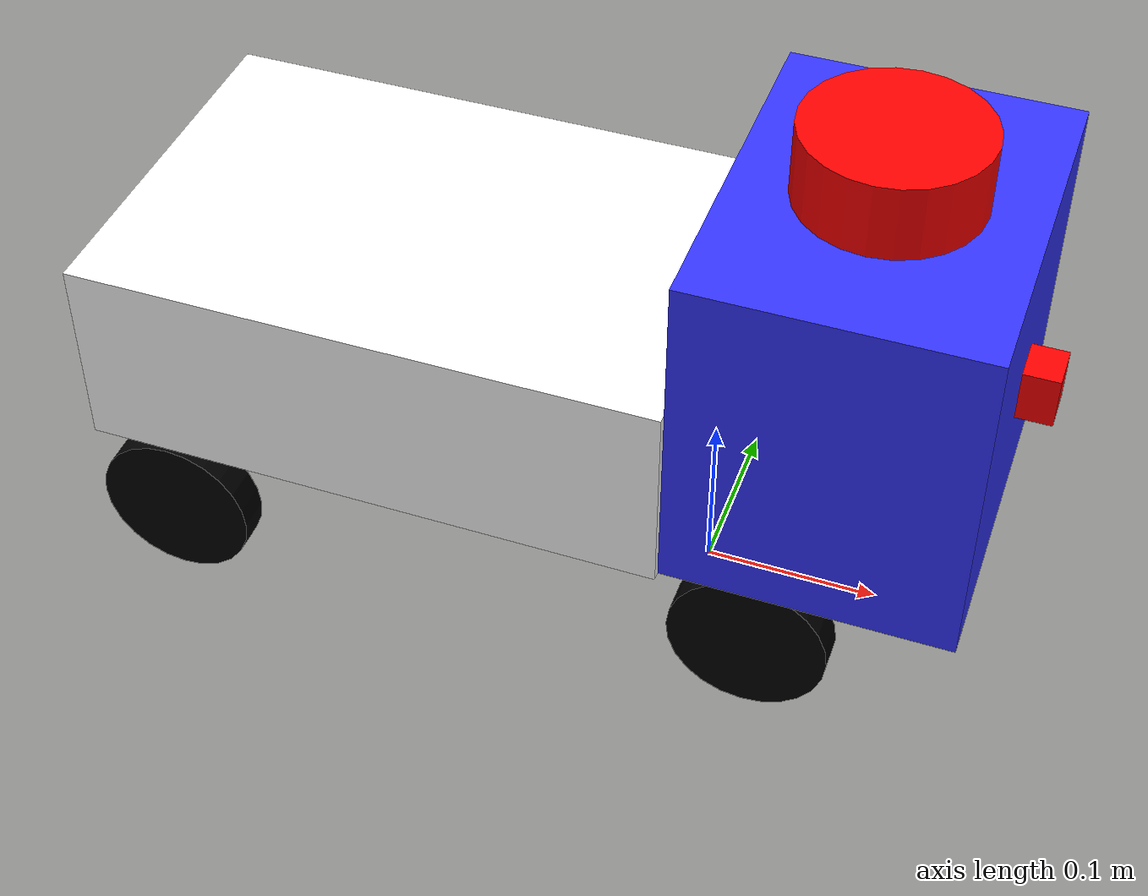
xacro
<?xml version="1.0"?>
<robot xmlns:xacro="http://ros.org/wiki/xacro" name="truck" >

  <xacro:arg name="wheel_diameter" default="0.09"/>

  <xacro:property name="wheel_radius" value="${$(arg wheel_diameter)/2}"/>
  <xacro:property name="wheel_diameter" value="0.09"/>
  <xacro:property name="wheel_width" value="0.02"/>
  <xacro:property name="car_width" value="0.492"/>
  <xacro:property name="cabin_width" value="0.21"/>
  <xacro:property name="trunk_width" value="0.22"/>
  <xacro:property name="wheel_friction" value="0.8"/>
  <xacro:property name="wheelbase_length" value="0.26"/>
  <xacro:property name="cabin_length" value="0.16"/>
  <xacro:property name="trunk_length" value="0.334"/>
  <xacro:property name="front_wheelbase_width" value="0.198"/>
  <xacro:property name="rear_wheelbase_width" value="0.204"/>
  <xacro:property name="wheelbase_width" value="0.213"/>
  <xacro:property name="wheel_mass" value="0.1"/>
  <xacro:property name="total_mass" value = "3.0"/>
  <xacro:property name="chassis_height" value = "0.286"/>
  <xacro:property name="cabin_height" value = "${chassis_height - wheel_diameter}"/>
  <xacro:property name="trunk_height" value = "0.115"/>
  <xacro:property name="chassis_elevation" value = "-0.01"/>
  <xacro:property name="chassis_mass" value = "${total_mass-4*wheel_mass}"/>
  <xacro:property name="cabin_mass" value = "${chassis_mass/2}"/>
  <xacro:property name="trunk_mass" value = "${chassis_mass/2}"/>

  <!-- COLOR -->
    <material name="blue">
      <color rgba="0.2 0.2 1 1"/>
    </material>

    <material name="white">
      <color rgba="1 1 1 1" />
    </material>

    <material name="black">
      <color rgba="0 0 0 1"/>
    </material>

    <material name="red">
        <color rgba="1 0 0 1"/>
    </material>

    <material name="gray">
        <color rgba="0.5 0.5 0.5 1"/>
    </material>

    <material name="invisible">
      <color rgba="0.0 0.0 0.0 0.0"/>
    </material>

  <!-- INERTIAL -->
  <xacro:macro name="cylinder_inertia" params="m r h">
        <inertia  ixx="${m*(3*r*r+h*h)/12}" ixy = "0" ixz = "0"
                    iyy="${m*(3*r*r+h*h)/12}" iyz = "0"
                    izz="${m*r*r/2}" />
  </xacro:macro>

  <xacro:macro name="box_inertia" params="m x y z">
          <inertia  ixx="${m*(y*y+z*z)/12}" ixy = "0" ixz = "0"
                    iyy="${m*(x*x+z*z)/12}" iyz = "0"
                    izz="${m*(x*x+z*z)/12}" />
  </xacro:macro>

  <xacro:macro name="sphere_inertia" params="m r">
          <inertia  ixx="${2*m*r*r/5}" ixy = "0" ixz = "0"
                    iyy="${2*m*r*r/5}" iyz = "0"
                    izz="${2*m*r*r/5}" />
  </xacro:macro>

  <xacro:macro name="cylinder_inertial" params="m r h">
    <inertial>
      <mass value="${m}"/>
      <xacro:cylinder_inertia m="${m}" r="${r}" h="${h}"/>
    </inertial>
  </xacro:macro>

  <!-- BASE FOOTPRINT -->

  <link name="base_footprint">
  </link>

  <joint name="base_footprint_joint" type="fixed">
      <parent link="base_link"/>
      <child link="base_footprint"/>
      <origin xyz="0 0 0" rpy="0 0 0"/>
  </joint>
   <!-- BASE LINK -->
  <link name="base_link">

  </link>
  <!-- CABIN LINK -->
  <link name="cabin_link">
    <visual>
      <geometry>
        <box size="${cabin_length} ${cabin_width} ${cabin_height}"/>
      </geometry>
      <material name="blue"/>
    </visual>
    <collision>
      <geometry>
        <box size="${cabin_length} ${cabin_width} ${cabin_height}"/>
      </geometry>
      <material name="blue"/>
    </collision>
    <inertial>
      <mass value="${cabin_mass}"/>
      <xacro:box_inertia m="${0.5*chassis_mass}" x="${cabin_length}" y="${cabin_width}" z="${cabin_height}"/>
    </inertial>
  </link>

  <joint name="cabin_joint" type="fixed">
    <parent link="base_link"/>
    <child link="cabin_link"/>
    <origin rpy="0 0 0" xyz="${cabin_length/2} 0 ${cabin_height/2 + wheel_diameter}"/>
  </joint>

  <gazebo reference="cabin_link">
        <material>Gazebo/Blue</material>
    </gazebo>

    <!-- TRUNK LINK -->
  <link name="trunk_link">
    <visual>
      <geometry>
        <box size="${trunk_length} ${trunk_width} ${trunk_height}"/>
      </geometry>
        <material name="white"/>
    </visual>
    <collision>
      <geometry>
        <box size="${trunk_length} ${trunk_width} ${trunk_height}"/>
      </geometry>
        <material name="white"/>
    </collision>
    <inertial>
      <mass value="${trunk_mass}"/>
      <xacro:box_inertia m="${0.5*chassis_mass}" x="${trunk_length}" y="${trunk_width}" z="${trunk_height}"/>
    </inertial>
  </link>

  <gazebo reference="trunk_link">
        <material>Gazebo/White</material>
    </gazebo>

  <joint name="trunk_joint" type="fixed">
      <parent link="cabin_link"/>
      <child link="trunk_link"/>
      <origin rpy="0 0 0" xyz="${-cabin_length/2 - trunk_length/2} 0 ${-cabin_height/2 + trunk_height/2}"/>
  </joint>

  <!-- CAMERA LINK -->
  <link name="camera_link">
    <visual>
      <geometry>
       <box size="0.02 0.025 0.03"/>
      </geometry>
       <material name="red"/>
    </visual>
  </link>

  <joint name="camera_joint" type="fixed">
        <parent link="cabin_link"/>
        <child link="camera_link"/>
        <origin xyz="${cabin_length/2 + 0.01} 0 0" rpy="0 0 0"/>
    </joint>

 <joint name="camera_optical_joint" type="fixed">
        <parent link="camera_link"/>
        <child link="camera_link_optical"/>
        <origin xyz="0 0 0" rpy="${-pi/2} 0 ${-pi/2}"/>
    </joint>

    <link name="camera_link_optical"></link>

    <gazebo reference="camera_link">
        <material>Gazebo/Red</material>

        <sensor name="camera" type="camera">
            <pose> 0 0 0 0 0 0 </pose>
            <visualize>true</visualize>
            <update_rate>10</update_rate>
            <camera>
                <horizontal_fov>1.089</horizontal_fov>
                <image>
                    <format>R8G8B8</format>
                    <width>640</width>
                    <height>480</height>
                </image>
                <clip>
                    <near>0.05</near>
                    <far>8.0</far>
                </clip>
            </camera>
            <plugin name="camera_controller" filename="libgazebo_ros_camera.so">
                <frame_name>camera_link_optical</frame_name>
            </plugin>
        </sensor>
    </gazebo>

  <!-- LASER -->
  <link name="laser">
    <visual>
          <geometry>
              <cylinder radius="0.05" length="0.042"/>
          </geometry>
          <material name="red"/>
      </visual>
      <collision>
          <geometry>
              <cylinder radius="0.045" length="0.02"/>
          </geometry>
      </collision>
    <inertial>
      <mass value="1e-5"/>
      <origin xyz="0 0 0" rpy="0 0 0"/>
      <inertia ixx="1e-6" ixy="0" ixz="0" iyy="1e-6" iyz="0" izz="1e-6"/>
    </inertial>
  </link>

  <gazebo reference="laser">
    <sensor type="ray" name="laser_scanner">
    <always_on>true</always_on>
    <pose> 0 0 0 0 0 0 </pose>
    <visualize>true</visualize>
    <update_rate>10</update_rate>
    <ray>
      <scan>
        <horizontal>
          <samples>360</samples>
          <min_angle>-3.14</min_angle>
          <max_angle>3.14</max_angle>
        </horizontal>
      </scan>
      <range>
        <min>0.3</min>
        <max>15</max>
      </range>
    </ray>
      <plugin name="scan" filename="libgazebo_ros_ray_sensor.so">
      <ros>
        <argument>~/out:=scan</argument>
      </ros>
      <output_type>sensor_msgs/LaserScan</output_type>
        <frame_name>laser</frame_name>
    </plugin>
    </sensor>
  </gazebo>

  <gazebo reference="laser">
        <material>Gazebo/Red</material>
    </gazebo>

  <joint name="laser_scanner_joint" type="fixed">
      <origin rpy="0 0 0" xyz="0 0 ${0.021 + cabin_height/2}"/>
      <parent link="cabin_link"/>
      <child link="laser"/>
  </joint>

  <!-- BACK LEFT WHEEL -->
  <link name="back_left_wheel">
    <visual>
      <geometry>
        <cylinder length="${wheel_width}" radius="${wheel_radius}"/>
      </geometry>
      <material name="black"/>
    </visual>
    <collision>
      <geometry>
        <cylinder length="${wheel_width}" radius="${wheel_radius}"/>
      </geometry>
    </collision>

    <xacro:cylinder_inertial m="${wheel_mass}" r="${wheel_radius}" h="${wheel_width}"/>
  </link>

  <gazebo reference="back_left_wheel">
        <material>Gazebo/Black</material>
    </gazebo>

  <joint name="back_left_wheel_joint" type="continuous">
      <axis xyz="0 0 1"/>
      <parent link="trunk_link"/>
      <child link="back_left_wheel"/>
      <origin rpy="-${pi/2} 0 0" xyz="${-0.121} ${rear_wheelbase_width/2} ${-trunk_height/2-wheel_radius}"/>
      <limit effort="1000.0" velocity="24.0"/>
      <dynamics damping="0.2"/>
      <mimic joint="virtual_rear_wheel_joint" multiplier="1.0" offset="0.0"/>
  </joint>

  <!-- BACK RIGHT WHEEL -->
  <link name="back_right_wheel">
    <visual>
      <geometry>
        <cylinder length="${wheel_width}" radius="${wheel_radius}"/>
      </geometry>
      <material name="black"/>
    </visual>
    <collision>
      <geometry>
        <cylinder length="${wheel_width}" radius="${wheel_radius}"/>
      </geometry>
    </collision>
    <xacro:cylinder_inertial m="${wheel_mass}" r="${wheel_radius}" h="${wheel_width}"/>
  </link>

  <gazebo reference="back_right_wheel">
        <material>Gazebo/Black</material>
    </gazebo>

  <joint name="back_right_wheel_joint" type="continuous">
      <axis xyz="0 0 1"/>
      <parent link="trunk_link"/>
      <child link="back_right_wheel"/>
      <origin rpy="-${pi/2} 0 0" xyz="${-0.121} ${-rear_wheelbase_width/2} ${-trunk_height/2-wheel_radius}"/>
      <limit effort="1000.0" velocity="24.0"/>
      <dynamics damping="0.2"/>
      <mimic joint="virtual_rear_wheel_joint" multiplier="1.0" offset="0.0"/>
    </joint>

  <!-- VITUAL REAR WHEEL -->
  <link name="virtual_rear_wheel">
    <visual>
      <geometry>
        <cylinder length="0.01" radius="${wheel_radius}"/>
      </geometry>
      <material name="invisible"/>
    </visual>
  </link>

  <joint name="virtual_rear_wheel_joint" type="continuous">
    <parent link="trunk_link"/>
    <child link="virtual_rear_wheel"/>
    <origin rpy="-${pi/2} 0 0" xyz="${-0.121} 0 ${-trunk_height/2-wheel_radius}"/>
    <axis xyz="0 0 1"/>
    <limit effort="1000.0" velocity="24.0"/>
    <dynamics damping="0.2"/>
  </joint>

  <!-- FRONT LEFT WHEEL -->
  <link name="front_left_wheel">
    <visual>
      <origin xyz="0 0 0" rpy="${pi/2} 0 ${pi/2}"/>
      <geometry>
        <cylinder length="${wheel_width}" radius="${wheel_radius}"/>
      </geometry>
      <material name="black">
        <color rgba="0 0 0 1"/>
      </material>
    </visual>
    <collision>
      <geometry>
        <cylinder length="${wheel_width}" radius="${wheel_radius}"/>
      </geometry>
    </collision>
    <xacro:cylinder_inertial m="${wheel_mass}" r="${wheel_radius}" h="${wheel_width}"/>
  </link>

  <gazebo reference="front_left_wheel">
        <material>Gazebo/Black</material>
    </gazebo>

  <joint name="front_left_wheel_joint" type="revolute">
      <axis xyz="0 0 1"/>
      <parent link="cabin_link"/>
      <child link="front_left_wheel"/>
      <origin rpy="0 0 ${pi/2}" xyz="${cabin_length/2 - 0.111} ${front_wheelbase_width/2 - wheel_width/2} ${- cabin_height/2 - wheel_radius}"/>
      <limit lower="-${30.21817774*pi/180}" upper="${30.21817774*pi/180}" effort="100.0" velocity="0.0"/>
      <dynamics damping="0.2"/>
      <mimic joint="virtual_front_wheel_joint" multiplier="1.0" offset="0.0"/>
    </joint>

  <!-- FRONT RIGHT WHEEL -->
  <link name="front_right_wheel">
    <visual>
      <origin xyz="0 0 0" rpy="${pi/2} 0 ${pi/2}"/>
      <geometry>
        <cylinder length="${wheel_width}" radius="${wheel_radius}"/>
      </geometry>
      <material name="black"/>
    </visual>
    <collision>
      <geometry>
        <cylinder length="${wheel_width}" radius="${wheel_radius}"/>
      </geometry>
    </collision>
    <xacro:cylinder_inertial m="${wheel_mass}" r="${wheel_radius}" h="${wheel_width}"/>
  </link>

   <gazebo reference="front_right_wheel">
        <material>Gazebo/Black</material>
    </gazebo>

  <joint name="front_right_wheel_joint" type="revolute">
    <axis xyz="0 0 1"/>
    <parent link="cabin_link"/>
    <child link="front_right_wheel"/>
    <origin rpy="0 0 ${pi/2}" xyz="${cabin_length/2 - 0.111} ${-front_wheelbase_width/2 + wheel_width/2} ${- cabin_height/2 - wheel_radius}"/>
    <limit lower="-${30.21817774*pi/180}" upper="${30.21817774*pi/180}" effort="100.0" velocity="0.0"/>
    <dynamics damping="0.2"/>
    <mimic joint="virtual_front_wheel_joint" multiplier="1.0" offset="0.0"/>
  </joint>
  <!-- VITUAL FRONT WHEEL -->

  <link name="virtual_front_wheel">
    <visual>
      <origin xyz="0 0 0" rpy="${pi/2} 0 ${pi/2}"/>
      <geometry>
        <cylinder length="0.01" radius="${wheel_radius}"/>
      </geometry>
      <material name="invisible"/>
    </visual>
  </link>

  <joint name="virtual_front_wheel_joint" type="revolute">
    <parent link="cabin_link"/>
    <child link="virtual_front_wheel"/>
    <origin xyz="${cabin_length/2 - 0.111} 0 ${- cabin_height/2 - wheel_radius}" rpy="0 0 ${pi/2}"/>
    <axis xyz="0 0 1"/>
    <limit lower="-${30.21817774*pi/180}" upper="${30.21817774*pi/180}" effort="100.0" velocity="0.0"/>
    <dynamics damping="0.2"/>
  </joint>

  <gazebo reference="front_left_wheel">
    <mu1>${wheel_friction}</mu1>
  </gazebo>

  <gazebo reference="front_right_wheel">
    <mu1>${wheel_friction}</mu1>
  </gazebo>

  <gazebo reference="back_left_wheel">
    <mu1>${wheel_friction}</mu1>
  </gazebo>

  <gazebo reference="back_right_wheel">
    <mu1>${wheel_friction}</mu1>
  </gazebo>

  <gazebo>
    <plugin name="car_gazebo_plugin" filename="libcar_gazebo_plugin.so">
    </plugin>
  </gazebo>
</robot>
